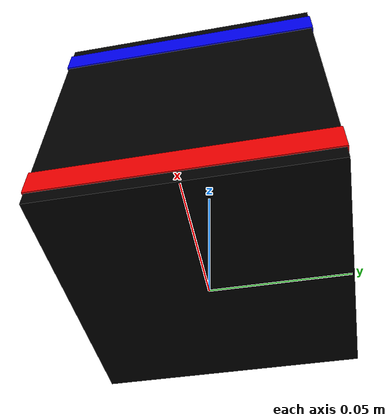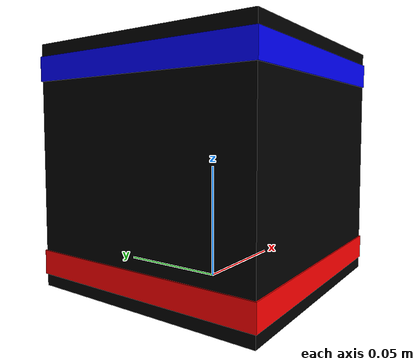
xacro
<?xml version="1.0"?>
<robot name="qube_model" xmlns:xacro="http://www.ros.org/wiki/xacro">
    <!--Create launch arguments-->
    <xacro:arg name="baud_rate" default="115200"/>
    <xacro:arg name="device" default="/dev/ttyACM0"/>
    <xacro:arg name="simulation" default="true"/>

    <!--Include qube visualization-->
    <xacro:include filename="$(find qube_description)/urdf/qube.macro.xacro"/>
    <!--Include qube_driver xacro-->
    <xacro:include filename="$(find qube_driver)/ros2_control/qube_driver.ros2_control.xacro"/>

    <!-- World to base link-->
    <link name="world"/>
    <xacro:qube prefix="" base_x="0" base_y="0" base_z="0"/>
    <joint name="world_to_base" type="fixed">
        <parent link="world"/>
        <child link="base_link"/>
        <origin xyz="0 0 0" rpy="0 0 0"/>
    </joint>

    <!--Create instance of qube driver with launch arguments-->
    <xacro:qube_driver_ros2_control name="qube_driver" prefix="" baud_rate="$(arg baud_rate)" device="$(arg device)" simulation="$(arg simulation)"/>

</robot>

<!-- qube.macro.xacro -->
<robot xmlns:xacro="http://www.ros.org/wiki/xacro">

	<xacro:macro name="qube" params="prefix base_x base_y base_z">
		<xacro:property name="box_width" value="0.102"/>
		<xacro:property name="angle_link_length" value="0.025"/>
		<xacro:property name="angle_link_width" value="0.002"/>
    <xacro:property name="rotor_radius" value="0.025"/>
    <xacro:property name="rotor_length" value="0.01"/>
    <xacro:property name="leg_diameter" value="0.0102"/>

    <material name = "black">
      <color rgba="0 0 0 1"/>
    </material>
    <material name = "red">
      <color rgba="1 0 0 1"/>
    </material>
    <material name = "white">
      <color rgba="1 1 1 1"/>
    </material>
    <material name = "blue">
      <color rgba="0 0 1 1"/>
    </material>

    <link name="${prefix}base_link">
    </link>

		<link name="${prefix}stator_link">
      <visual>
        <geometry>
          <box size="${box_width} ${box_width} ${box_width}"/>
        </geometry>
        <origin xyz="0 0 0" rpy="0 0 0"/>
        <material name="black"/>
      </visual>
    </link>

   <link name ="${prefix}blue_lights_link">
      <visual>
        <geometry>
          <box size="${box_width*1.01} ${box_width*1.01} ${box_width*0.1}"/>
        </geometry>
        <origin xyz="0 0 0" rpy="0 0 0"/>
        <material name="blue"/>
      </visual>
    </link>

    <link name="${prefix}red_stripe_link">
      <visual>
        <geometry>
          <box size="${box_width*1.01} ${box_width*1.01} ${box_width*0.1}"/>
        </geometry>
        <origin xyz="0 0 0" rpy="0 0 0"/>
        <material name="red"/>
      </visual>
    </link>

    <link name="${prefix}rotor_link">
      <visual>
        <geometry>
          <cylinder length="${rotor_length}" radius="${rotor_radius}"/>
        </geometry>
        <origin xyz="0 0 0" rpy="0 0 0"/>
        <material name="red"/>
      </visual>
    </link>

    <link name="${prefix}angle_link">
      <visual>
        <geometry>
          <box size="${angle_link_length} ${angle_link_width} ${angle_link_width}"/>
        </geometry>
        <origin xyz="0 0 0" rpy="0 0 0"/>
        <material name="white"/>
      </visual>
    </link>

    <joint name="${prefix}blue_lights_joint" type="fixed">
      <parent link="${prefix}stator_link"/>
        <child link="${prefix}blue_lights_link"/>
      <origin xyz="0 0 ${box_width*0.4}" rpy="0 0 0"/>
    </joint>

    <joint name="${prefix}red_stripe_joint" type="fixed">
      <parent link="${prefix}stator_link"/>
        <child link="${prefix}red_stripe_link"/>
      <origin xyz="0 0 ${-box_width*0.4}" rpy="0 0 0"/>
    </joint>

    <joint name="${prefix}stator_joint" type="fixed">
      <parent link="${prefix}base_link"/>
      <child link="${prefix}stator_link"/>
      <origin xyz="0 0 ${box_width/2}" rpy="0 0 0"/>
    </joint>

    <joint name="${prefix}motor_joint" type="revolute">
      <parent link="${prefix}stator_link"/>
      <child link="${prefix}rotor_link"/>
      <origin xyz="0 0 ${box_width/2}" rpy="0 0 0"/>
      <axis xyz="0 0 -1"/>
      <limit lower="-3.14" upper="3.14" effort="100.0" velocity="1.0"/>
    </joint>

    <joint name="${prefix}indicator_joint" type="fixed">
      <parent link="${prefix}rotor_link"/>
      <child link="${prefix}angle_link"/>
      <origin xyz="0.0125 0 0.005" rpy="0 0 0"/>
    </joint>

	</xacro:macro>
</robot>
